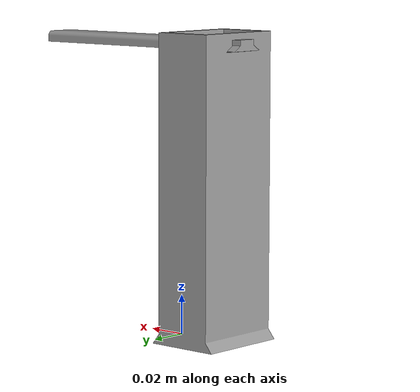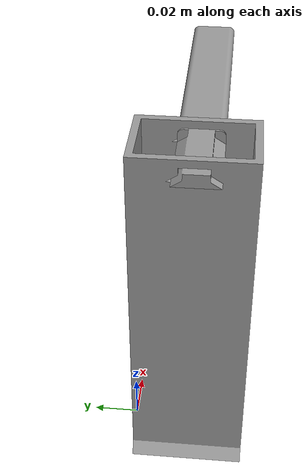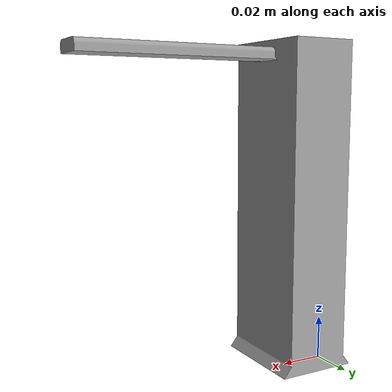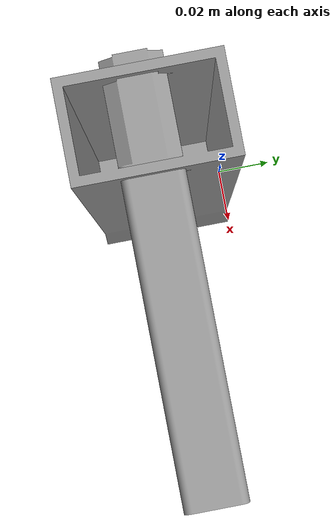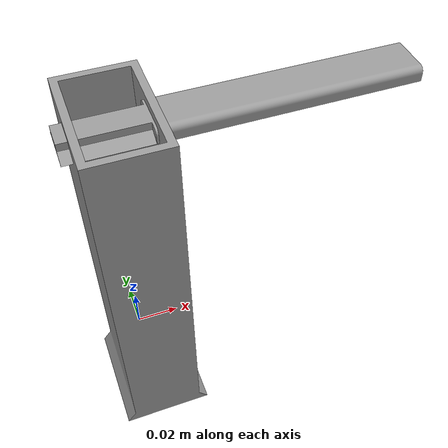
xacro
<?xml version="1.0"?>
<robot xmlns:xacro="http://www.ros.org/wiki/xacro">

  <link name="end_eff_base_link">
    <visual>
      <geometry>
        <mesh filename="package://ur_description_custom/meshes/end_eff_basic/base.stl" scale="0.001 0.001 0.001"/>
      </geometry>
      <material name="grey">
        <color rgba="0.6 0.6 0.6 1"/>
      </material>
    </visual>
    <collision>
      <geometry>
        <mesh filename="package://ur_description_custom/meshes/end_eff_basic/base.stl" scale="0.005 0.001 0.001"/>
      </geometry>
    </collision>
  </link>

  <link name="end_eff_finger_link">
    <visual>
      <geometry>
        <mesh filename="package://ur_description_custom/meshes/end_eff_basic/finger.stl" scale="0.001 0.001 0.001"/>
      </geometry>
      <material name="grey">
        <color rgba="0.6 0.6 0.6 1"/>
      </material>
    </visual>
  </link>

  <joint name="end_eff_base_to_finger" type="fixed">
    <parent link="end_eff_base_link"/>
    <child link="end_eff_finger_link"/>
    <origin xyz="-0.02 -0.02 0.15" rpy="0 0 1.5708"/>
  </joint>

</robot>
